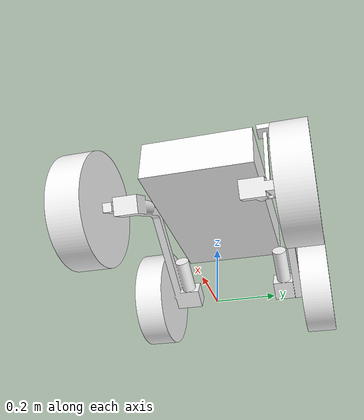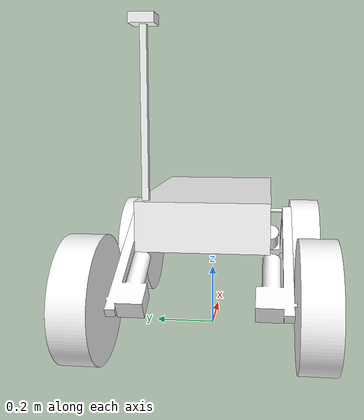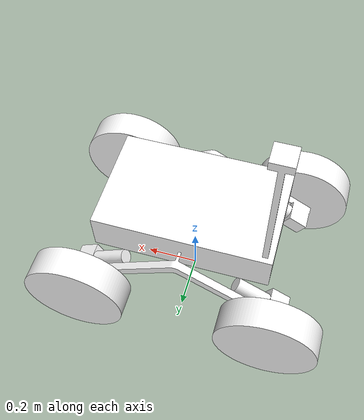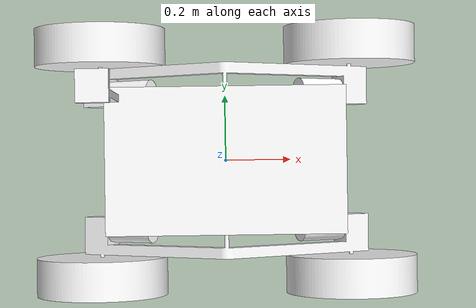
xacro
<?xml version="1.0" ?>
<robot name="rover" xmlns:xacro="http://www.ros.org/wiki/xacro">

<material name="silver">
  <color rgba="1.00 1.00 1.00 1.000"/>
</material>

<link name="base_link">
  <inertial>
    <origin xyz="-0.0027929867125631876 0.0016095177665623776 0.4092816334857682" rpy="0 0 0"/>
    <mass value="309.05833121832194"/>
    <inertia ixx="5.420217" iyy="12.286392" izz="15.1977" ixy="0.145354" iyz="-0.222827" ixz="0.38667"/>
  </inertial>
  <visual>
    <origin xyz="0 0 0.33" rpy="0 0 0"/>
    <geometry>
      <mesh filename="file://$(find rover_description)/meshes/base_link.stl" scale="0.001 0.001 0.001"/>
    </geometry>
    <material name="silver"/>
  </visual>
  <collision>
    <origin xyz="0 0 0.33" rpy="0 0 0"/>
    <geometry>
      <mesh filename="file://$(find rover_description)/meshes/base_link.stl" scale="0.001 0.001 0.001"/>
    </geometry>
  </collision>
</link>
<gazebo reference="base_link">
  <material>Gazebo/Orange</material>
</gazebo>

<link name="wheel_left_back_1">
  <inertial>
    <origin xyz="3.304105354318132e-07 0.05500000000000016 4.996003610813204e-16" rpy="0 0 0"/>
    <mass value="97.93082575512985"/>
    <inertia ixx="0.982573" iyy="1.767651" izz="0.982573" ixy="0.0" iyz="0.0" ixz="-0.0"/>
  </inertial>
  <visual>
    <origin xyz="0.363731 -0.278 0.135" rpy="0 0 0"/>
    <geometry>
      <mesh filename="file://$(find rover_description)/meshes/wheel_left_back_1.stl" scale="0.001 0.001 0.001"/>
    </geometry>
    <material name="silver"/>
  </visual>
  <collision>
    <origin xyz="0.363731 -0.278 0.135" rpy="0 0 0"/>
    <geometry>
      <mesh filename="file://$(find rover_description)/meshes/wheel_left_back_1.stl" scale="0.001 0.001 0.001"/>
    </geometry>
  </collision>
</link>

<link name="wheel_right_back_1">
  <inertial>
    <origin xyz="3.304105352097686e-07 -0.05499999999999988 4.996003610813204e-16" rpy="0 0 0"/>
    <mass value="97.93082575512983"/>
    <inertia ixx="0.982573" iyy="1.767651" izz="0.982573" ixy="0.0" iyz="-0.0" ixz="-0.0"/>
  </inertial>
  <visual>
    <origin xyz="0.363731 0.278 0.135" rpy="0 0 0"/>
    <geometry>
      <mesh filename="file://$(find rover_description)/meshes/wheel_right_back_1.stl" scale="0.001 0.001 0.001"/>
    </geometry>
    <material name="silver"/>
  </visual>
  <collision>
    <origin xyz="0.363731 0.278 0.135" rpy="0 0 0"/>
    <geometry>
      <mesh filename="file://$(find rover_description)/meshes/wheel_right_back_1.stl" scale="0.001 0.001 0.001"/>
    </geometry>
  </collision>
</link>

<link name="wheel_right_front_1">
  <inertial>
    <origin xyz="-3.304105354318132e-07 -0.05499999999999994 4.440892098500626e-16" rpy="0 0 0"/>
    <mass value="97.9308257551298"/>
    <inertia ixx="0.982573" iyy="1.767651" izz="0.982573" ixy="0.0" iyz="0.0" ixz="-0.0"/>
  </inertial>
  <visual>
    <origin xyz="-0.363731 0.278 0.135" rpy="0 0 0"/>
    <geometry>
      <mesh filename="file://$(find rover_description)/meshes/wheel_right_front_1.stl" scale="0.001 0.001 0.001"/>
    </geometry>
    <material name="silver"/>
  </visual>
  <collision>
    <origin xyz="-0.363731 0.278 0.135" rpy="0 0 0"/>
    <geometry>
      <mesh filename="file://$(find rover_description)/meshes/wheel_right_front_1.stl" scale="0.001 0.001 0.001"/>
    </geometry>
  </collision>
</link>

<link name="wheel_left_front_1">
  <inertial>
    <origin xyz="-3.3041053537630205e-07 0.05499999999999994 5.551115123125783e-16" rpy="0 0 0"/>
    <mass value="97.93082575512975"/>
    <inertia ixx="0.982573" iyy="1.767651" izz="0.982573" ixy="0.0" iyz="-0.0" ixz="-0.0"/>
  </inertial>
  <visual>
    <origin xyz="-0.363731 -0.278 0.135" rpy="0 0 0"/>
    <geometry>
      <mesh filename="file://$(find rover_description)/meshes/wheel_left_front_1.stl" scale="0.001 0.001 0.001"/>
    </geometry>
    <material name="silver"/>
  </visual>
  <collision>
    <origin xyz="-0.363731 -0.278 0.135" rpy="0 0 0"/>
    <geometry>
      <mesh filename="file://$(find rover_description)/meshes/wheel_left_front_1.stl" scale="0.001 0.001 0.001"/>
    </geometry>
  </collision>
</link>

<link name="chassis_left_1">
  <inertial>
    <origin xyz="-1.7308169517470362e-14 0.03167866965335492 -0.1594464649986759" rpy="0 0 0"/>
    <mass value="18.083780860304863"/>
    <inertia ixx="0.081138" iyy="1.630619" izz="1.582709" ixy="-0.0" iyz="-0.015402" ixz="-0.0"/>
  </inertial>
  <visual>
    <origin xyz="-0.0 -0.19 -0.075" rpy="0 0 0"/>
    <geometry>
      <mesh filename="file://$(find rover_description)/meshes/chassis_left_1.stl" scale="0.001 0.001 0.001"/>
    </geometry>
    <material name="silver"/>
  </visual>
  <collision>
    <origin xyz="-0.0 -0.19 -0.075" rpy="0 0 0"/>
    <geometry>
      <mesh filename="file://$(find rover_description)/meshes/chassis_left_1.stl" scale="0.001 0.001 0.001"/>
    </geometry>
  </collision>
</link>

<link name="chassis_right_1">
  <inertial>
    <origin xyz="-1.2633700377715634e-15 -0.031678669653354724 -0.15944646499867604" rpy="0 0 0"/>
    <mass value="18.083780860304806"/>
    <inertia ixx="0.081138" iyy="1.630619" izz="1.582709" ixy="-0.0" iyz="0.015402" ixz="0.0"/>
  </inertial>
  <visual>
    <origin xyz="0.0 0.19 -0.075" rpy="0 0 0"/>
    <geometry>
      <mesh filename="file://$(find rover_description)/meshes/chassis_right_1.stl" scale="0.001 0.001 0.001"/>
    </geometry>
    <material name="silver"/>
  </visual>
  <collision>
    <origin xyz="0.0 0.19 -0.075" rpy="0 0 0"/>
    <geometry>
      <mesh filename="file://$(find rover_description)/meshes/chassis_right_1.stl" scale="0.001 0.001 0.001"/>
    </geometry>
  </collision>
</link>

<joint name="left_back" type="continuous">
  <origin xyz="-0.363731 0.088 -0.21" rpy="0 0 0"/>
  <parent link="chassis_left_1"/>
  <child link="wheel_left_back_1"/>
  <axis xyz="0.0 1.0 -0.0"/>
</joint>

<joint name="right_back" type="continuous">
  <origin xyz="-0.363731 -0.088 -0.21" rpy="0 0 0"/>
  <parent link="chassis_right_1"/>
  <child link="wheel_right_back_1"/>
  <axis xyz="-0.0 1.0 0.0"/>
</joint>

<joint name="right_front" type="continuous">
  <origin xyz="0.363731 -0.088 -0.21" rpy="0 0 0"/>
  <parent link="chassis_right_1"/>
  <child link="wheel_right_front_1"/>
  <axis xyz="-0.0 1.0 0.0"/>
</joint>

<joint name="left_front" type="continuous">
  <origin xyz="0.363731 0.088 -0.21" rpy="0 0 0"/>
  <parent link="chassis_left_1"/>
  <child link="wheel_left_front_1"/>
  <axis xyz="0.0 1.0 -0.0"/>
</joint>

<joint name="link_left" type="fixed">
  <origin xyz="0.0 0.19 0.405" rpy="0 0 0"/>
  <parent link="base_link"/>
  <child link="chassis_left_1"/>
  <axis xyz="0.0 1.0 -0.0"/>
</joint>

<joint name="link_right" type="fixed">
  <origin xyz="0.0 -0.19 0.405" rpy="0 0 0"/>
  <parent link="base_link"/>
  <child link="chassis_right_1"/>
  <axis xyz="0.0 -1.0 0.0"/>
</joint>

</robot>
